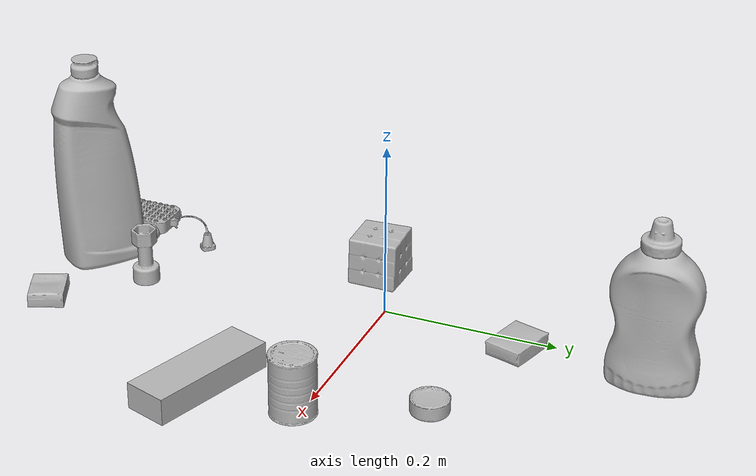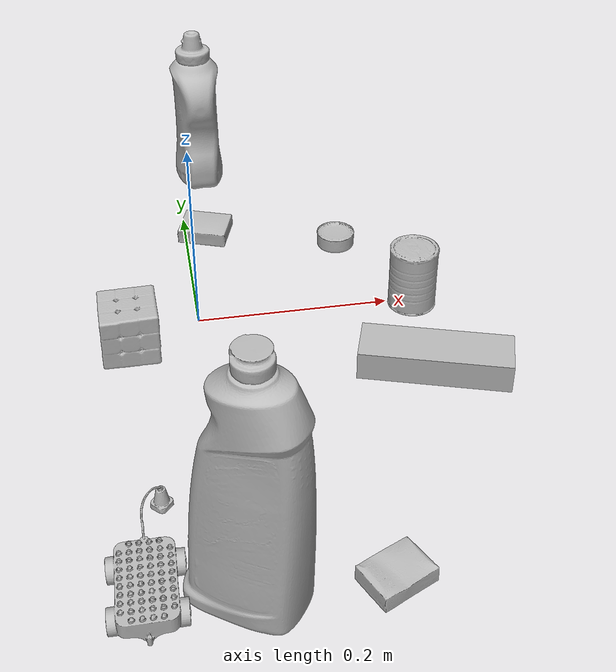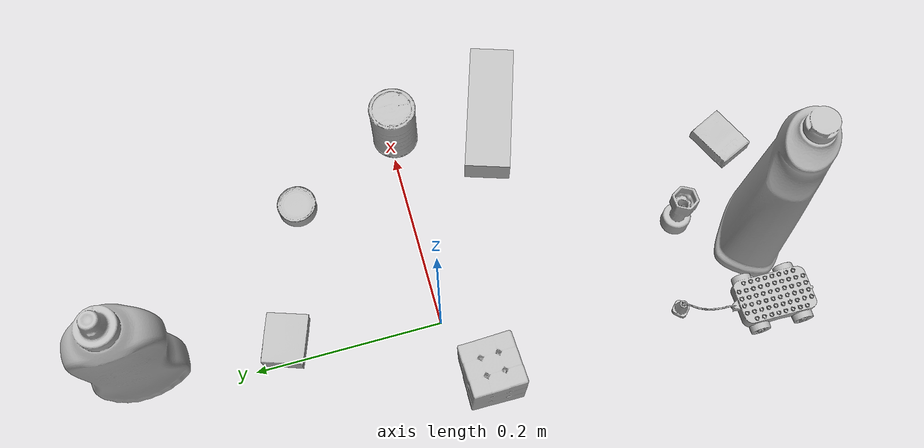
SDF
<sdf version="1.4">
  <world name="default">
    <light name="light1" type="point">
      <pose>0 0 1 0 0 0</pose>
      <diffuse>3 3 3 1</diffuse>
      <specular>3 3 3 1</specular>
    </light>
    <light name="light2" type="point">
      <pose>0 0.5 2 0 0 0</pose>
      <diffuse>1 1 1 1</diffuse>
      <specular>1 1 1 1</specular>
    </light>
    <light name="light3" type="point">
      <pose>0 0.5 2 0 0 0</pose>
      <diffuse>3 3 3 1</diffuse>
      <specular>3 3 3 1</specular>
    </light>
    <scene>
      <ambient>0.7 0.7 0.7</ambient>
    </scene>
    <model name="bottle1">
      <link name="link_bottle1">
        <collision name="default">
          <geometry>
            <mesh>
              <uri>model://mustard_bottle/collision_meshes/collision.obj</uri>
              <scale>1.0 1.0 1.0</scale>
            </mesh>
          </geometry>
          <surface>
            <friction>
              <ode>
                <mu>0.5</mu>
                <mu2>0.5</mu2>
              </ode>
            </friction>
          <contact>
        <ode>
            <max_vel>0</max_vel>
            <min_depth>0.0001</min_depth>
            <kp>1e8</kp>
        </ode>
    </contact></surface>
        </collision>
        <visual name="default">
          <geometry>
            <mesh>
              <uri>model://mustard_bottle/visual_meshes/visual.dae</uri>
              <scale>1.0 1.0 1.0</scale>
            </mesh>
          </geometry>
        </visual>
        <inertial>
          <mass>0.7866348028182983</mass>
          <pose>0.0005032454500906169 -0.00015647400869056582 -0.0174757931381464 0.00041823249995057767 0.0009465787698991903 0.02485370186883952</pose>
          <inertia>
            <ixx>0.0021843775</ixx>
            <iyy>0.0019166061</iyy>
            <izz>0.0005756938</izz>
            <ixy>0</ixy>
            <ixz>0</ixz>
            <iyz>0</iyz>
          </inertia>
        </inertial>
      </link>
      <pose>0.030838921666145325 0.30980369448661804 0.09583088755607605 -0.01205031960179907 -0.004889718216351054 -3.106173981491932</pose>
    </model>
    <model name="bottle2">
      <link name="link_bottle2">
        <collision name="default">
          <geometry>
            <mesh>
              <uri>model://bleach_cleanser/collision_meshes/collision.obj</uri>
              <scale>1.0 1.0 1.0</scale>
            </mesh>
          </geometry>
          <surface>
            <friction>
              <ode>
                <mu>0.5</mu>
                <mu2>0.5</mu2>
              </ode>
            </friction>
          <contact>
        <ode>
            <max_vel>0</max_vel>
            <min_depth>0.0001</min_depth>
            <kp>1e8</kp>
        </ode>
    </contact></surface>
        </collision>
        <visual name="default">
          <geometry>
            <mesh>
              <uri>model://bleach_cleanser/visual_meshes/visual.dae</uri>
              <scale>1.0 1.0 1.0</scale>
            </mesh>
          </geometry>
        </visual>
        <inertial>
          <mass>1.5776710510253906</mass>
          <pose>0.00012193183647468686 0.003783883061259985 -0.02442161552608013 -0.07381671362264838 0.0004201168949340897 -0.006875045535038288</pose>
          <inertia>
            <ixx>0.007678755</ixx>
            <iyy>0.0071554743</iyy>
            <izz>0.0013128674</izz>
            <ixy>0</ixy>
            <ixz>0</ixz>
            <iyz>0</iyz>
          </inertia>
        </inertial>
      </link>
      <pose>0.007972568273544312 -0.3549576997756958 0.12576456367969513 -0.004000665973269166 0.005205301023523903 -2.18580450548892</pose>
    </model>
    <model name="toy1">
      <link name="link_toy1">
        <collision name="default">
          <geometry>
            <mesh>
              <uri>model://g_lego_duplo/collision_meshes/collision.obj</uri>
              <scale>0.5 0.5 0.5</scale>
            </mesh>
          </geometry>
          <surface>
            <friction>
              <ode>
                <mu>0.5</mu>
                <mu2>0.5</mu2>
              </ode>
            </friction>
          <contact>
        <ode>
            <max_vel>0</max_vel>
            <min_depth>0.0001</min_depth>
            <kp>1e8</kp>
        </ode>
    </contact></surface>
        </collision>
        <visual name="default">
          <geometry>
            <mesh>
              <uri>model://g_lego_duplo/visual_meshes/visual.dae</uri>
              <scale>0.5 0.5 0.5</scale>
            </mesh>
          </geometry>
        </visual>
        <inertial>
          <mass>0.06580430269241333</mass>
          <pose>-0.025023844093084335 0.0008777321199886501 0.0019403373589739203 0.010962977320182745 0.038108249742412996 -0.09653031078073558</pose>
          <inertia>
            <ixx>2.3837789e-05</ixx>
            <iyy>7.206929e-05</iyy>
            <izz>9.016138e-05</izz>
            <ixy>0</ixy>
            <ixz>0</ixz>
            <iyz>0</iyz>
          </inertia>
        </inertial>
      </link>
      <pose>-0.06870167702436447 -0.316047340631485 0.014970272779464722 0.0013525463655979081 -0.003885775539194471 1.5560122802963021</pose>
    </model>
    <model name="toy2">
      <link name="link_toy2">
        <collision name="default">
          <geometry>
            <mesh>
              <uri>model://c_toy_airplane/collision_meshes/collision.obj</uri>
              <scale>1.0 1.0 1.0</scale>
            </mesh>
          </geometry>
          <surface>
            <friction>
              <ode>
                <mu>0.5</mu>
                <mu2>0.5</mu2>
              </ode>
            </friction>
          <contact>
        <ode>
            <max_vel>0</max_vel>
            <min_depth>0.0001</min_depth>
            <kp>1e8</kp>
        </ode>
    </contact></surface>
        </collision>
        <visual name="default">
          <geometry>
            <mesh>
              <uri>model://c_toy_airplane/visual_meshes/visual.dae</uri>
              <scale>1.0 1.0 1.0</scale>
            </mesh>
          </geometry>
        </visual>
        <inertial>
          <mass>0.012545601464807987</mass>
          <pose>-0.00023024262918625027 -4.4310368707556336e-07 -0.0060805282555520535 -0.006192226732466636 -0.01679790977646328 0.7654621556572541</pose>
          <inertia>
            <ixx>5.760684e-06</ixx>
            <iyy>5.744425e-06</iyy>
            <izz>1.3524945e-06</izz>
            <ixy>0</ixy>
            <ixz>0</ixz>
            <iyz>0</iyz>
          </inertia>
        </inertial>
      </link>
      <pose>0.04328741878271103 -0.2790921628475189 0.033511966466903687 -0.0001075381144036295 3.941032805087834e-05 1.347608261876636</pose>
    </model>
    <model name="can1">
      <link name="link_can1">
        <collision name="default">
          <geometry>
            <mesh>
              <uri>model://tuna_fish_can/collision_meshes/collision.obj</uri>
              <scale>0.5 0.5 0.5</scale>
            </mesh>
          </geometry>
          <surface>
            <friction>
              <ode>
                <mu>0.5</mu>
                <mu2>0.5</mu2>
              </ode>
            </friction>
          <contact>
        <ode>
            <max_vel>0</max_vel>
            <min_depth>0.0001</min_depth>
            <kp>1e8</kp>
        </ode>
    </contact></surface>
        </collision>
        <visual name="default">
          <geometry>
            <mesh>
              <uri>model://tuna_fish_can/visual_meshes/visual.dae</uri>
              <scale>0.5 0.5 0.5</scale>
            </mesh>
          </geometry>
        </visual>
        <inertial>
          <mass>0.0216250978410244</mass>
          <pose>-2.036200021393597e-05 -7.256498065544292e-06 -0.0005269024986773729 -0.0017944779234091367 0.00017161663308651613 0.24053681665098822</pose>
          <inertia>
            <ixx>2.923745e-06</ixx>
            <iyy>2.9115588e-06</iyy>
            <izz>5.002946e-06</izz>
            <ixy>0</ixy>
            <ixz>0</ixz>
            <iyz>0</iyz>
          </inertia>
        </inertial>
      </link>
      <pose>0.16936706006526947 0.11877788603305817 0.008519995957612991 -9.565829435531116e-09 9.01111104677677e-09 2.3226938822878007</pose>
    </model>
    <model name="can2">
      <link name="link_can2">
        <collision name="default">
          <geometry>
            <mesh>
              <uri>model://master_chef_can/collision_meshes/collision.obj</uri>
              <scale>0.5 0.5 0.5</scale>
            </mesh>
          </geometry>
          <surface>
            <friction>
              <ode>
                <mu>0.5</mu>
                <mu2>0.5</mu2>
              </ode>
            </friction>
          <contact>
        <ode>
            <max_vel>0</max_vel>
            <min_depth>0.0001</min_depth>
            <kp>1e8</kp>
        </ode>
    </contact></surface>
        </collision>
        <visual name="default">
          <geometry>
            <mesh>
              <uri>model://master_chef_can/visual_meshes/visual.dae</uri>
              <scale>0.5 0.5 0.5</scale>
            </mesh>
          </geometry>
        </visual>
        <inertial>
          <mass>0.16779577732086182</mass>
          <pose>-4.661964703700505e-05 1.3926845099376806e-07 -5.080012488178909e-05 -0.001799515621871614 0.0006479176547847844 -0.610266079213139</pose>
          <inertia>
            <ixx>9.848473e-05</ixx>
            <iyy>9.77599e-05</iyy>
            <izz>5.442035e-05</izz>
            <ixy>0</ixy>
            <ixz>0</ixz>
            <iyz>0</iyz>
          </inertia>
        </inertial>
      </link>
      <pose>0.22705574333667755 -0.0072982157580554485 0.03530198335647583 -1.1408129960974135e-06 -9.010447235178684e-07 -1.0383667534861398</pose>
    </model>
    <model name="box1">
      <link name="link_box1">
        <collision name="default">
          <geometry>
            <mesh>
              <uri>model://rubiks_cube/collision_meshes/collision.obj</uri>
              <scale>1.0 1.0 1.0</scale>
            </mesh>
          </geometry>
          <surface>
            <friction>
              <ode>
                <mu>0.5</mu>
                <mu2>0.5</mu2>
              </ode>
            </friction>
          <contact>
        <ode>
            <max_vel>0</max_vel>
            <min_depth>0.0001</min_depth>
            <kp>1e8</kp>
        </ode>
    </contact></surface>
        </collision>
        <visual name="default">
          <geometry>
            <mesh>
              <uri>model://rubiks_cube/visual_meshes/visual.dae</uri>
              <scale>1.0 1.0 1.0</scale>
            </mesh>
          </geometry>
        </visual>
        <inertial>
          <mass>0.232398122549057</mass>
          <pose>2.6721041649580002e-05 5.256967051536776e-05 -7.264316082000732e-06 -0.05467303663832053 -0.0981402329670775 -0.034454960240128486</pose>
          <inertia>
            <ixx>0.00012841556</ixx>
            <iyy>0.00012781669</iyy>
            <izz>0.00012947968</izz>
            <ixy>0</ixy>
            <ixz>0</ixz>
            <iyz>0</iyz>
          </inertia>
        </inertial>
      </link>
      <pose>-0.07072950154542923 -0.03527696430683136 0.028678979724645615 -2.6323112499656013e-06 -8.411022462323697e-07 0.02588066057883542</pose>
    </model>
    <model name="box2">
      <link name="link_box2">
        <collision name="default">
          <geometry>
            <mesh>
              <uri>model://jenga/collision_meshes/collision.obj</uri>
              <scale>1.0 1.0 1.0</scale>
            </mesh>
          </geometry>
          <surface>
            <friction>
              <ode>
                <mu>0.5</mu>
                <mu2>0.5</mu2>
              </ode>
            </friction>
          <contact>
        <ode>
            <max_vel>0</max_vel>
            <min_depth>0.0001</min_depth>
            <kp>1e8</kp>
        </ode>
    </contact></surface>
        </collision>
        <visual name="default">
          <geometry>
            <mesh>
              <uri>model://jenga/visual_meshes/visual.dae</uri>
              <scale>1.0 1.0 1.0</scale>
            </mesh>
          </geometry>
        </visual>
        <inertial>
          <mass>0.2088489830493927</mass>
          <pose>-2.502855807051674e-07 -0.0001025000965455547 -4.092339804628864e-05 0.0 -7.342154049184251e-07 0.0</pose>
          <inertia>
            <ixx>5.7793575e-05</ixx>
            <iyy>0.00039160773</iyy>
            <izz>0.00041807455</izz>
            <ixy>0</ixy>
            <ixz>0</ixz>
            <iyz>0</iyz>
          </inertia>
        </inertial>
      </link>
      <pose>0.22215737402439117 -0.11782108247280121 0.014999994076788425 1.0686570052903504e-08 -1.7518001450810228e-09 2.8247597541015623</pose>
    </model>
    <model name="box3">
      <link name="link_box3">
        <collision name="default">
          <geometry>
            <mesh>
              <uri>model://cracker_box/collision_meshes/collision.obj</uri>
              <scale>0.25 0.25 0.25</scale>
            </mesh>
          </geometry>
          <surface>
            <friction>
              <ode>
                <mu>0.5</mu>
                <mu2>0.5</mu2>
              </ode>
            </friction>
          <contact>
        <ode>
            <max_vel>0</max_vel>
            <min_depth>0.0001</min_depth>
            <kp>1e8</kp>
        </ode>
    </contact></surface>
        </collision>
        <visual name="default">
          <geometry>
            <mesh>
              <uri>model://cracker_box/visual_meshes/visual.dae</uri>
              <scale>0.25 0.25 0.25</scale>
            </mesh>
          </geometry>
        </visual>
        <inertial>
          <mass>0.039105094969272614</mass>
          <pose>0.00023660340229980648 6.358561222441494e-05 -0.00042573834070935845 -0.0003162078884583708 -0.011106488668689832 0.0025467950032832675</pose>
          <inertia>
            <ixx>6.216619e-06</ixx>
            <iyy>1.0264859e-05</iyy>
            <izz>1.4648894e-05</izz>
            <ixy>0</ixy>
            <ixz>0</ixz>
            <iyz>0</iyz>
          </inertia>
        </inertial>
      </link>
      <pose>0.12230806052684784 -0.3615337610244751 0.009096028283238411 -0.014050583299254196 -0.005016579626396401 0.4263913431603764</pose>
    </model>
    <model name="box4">
      <link name="link_box4">
        <collision name="default">
          <geometry>
            <mesh>
              <uri>model://pudding_box/collision_meshes/collision.obj</uri>
              <scale>0.5 0.5 0.5</scale>
            </mesh>
          </geometry>
          <surface>
            <friction>
              <ode>
                <mu>0.5</mu>
                <mu2>0.5</mu2>
              </ode>
            </friction>
          <contact>
        <ode>
            <max_vel>0</max_vel>
            <min_depth>0.0001</min_depth>
            <kp>1e8</kp>
        </ode>
    </contact></surface>
        </collision>
        <visual name="default">
          <geometry>
            <mesh>
              <uri>model://pudding_box/visual_meshes/visual.dae</uri>
              <scale>0.5 0.5 0.5</scale>
            </mesh>
          </geometry>
        </visual>
        <inertial>
          <mass>0.03813362866640091</mass>
          <pose>0.00024474109522998333 0.00040339428232982755 -0.0002594413817860186 0.005213101815861678 -0.006603796390356506 0.020079825165494957</pose>
          <inertia>
            <ixx>1.0777026e-05</ixx>
            <iyy>7.25086e-06</iyy>
            <izz>1.5915095e-05</izz>
            <ixy>0</ixy>
            <ixz>0</ixz>
            <iyz>0</iyz>
          </inertia>
        </inertial>
      </link>
      <pose>0.023260045796632767 0.16212353110313416 0.00986290443688631 0.022348288282672407 -0.011391805107380384 1.2524413603575837</pose>
    </model>
  <physics type="ode">
      <max_contacts>50</max_contacts>
      <ode>
        <solver>
          <type>quick</type>
          <iters>75</iters>
        </solver>
        <constraints>
          <contact_max_correcting_vel>0</contact_max_correcting_vel>
          <contact_surface_layer>0</contact_surface_layer>
        </constraints>
      </ode>
    </physics></world>
</sdf>
